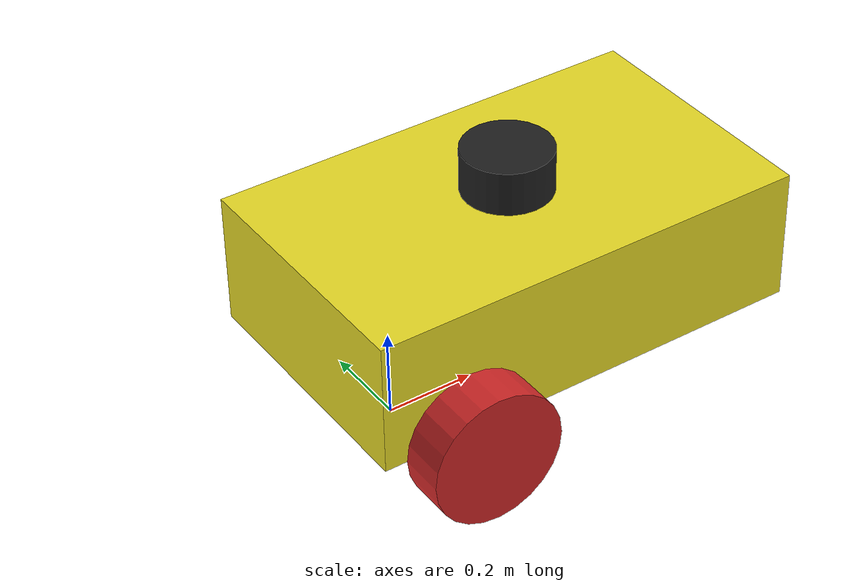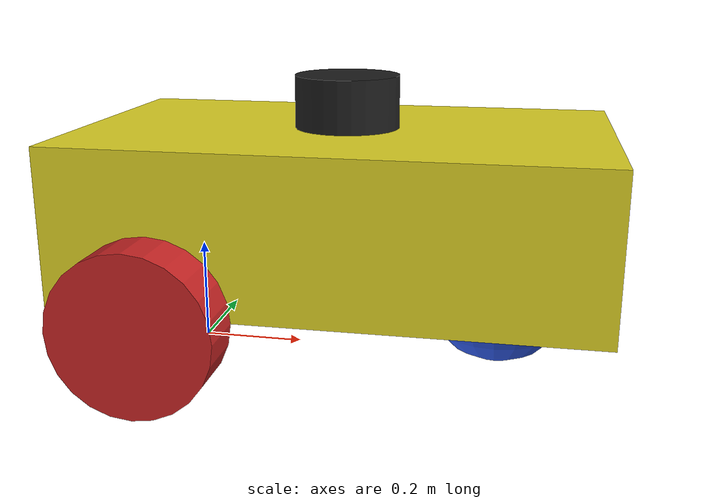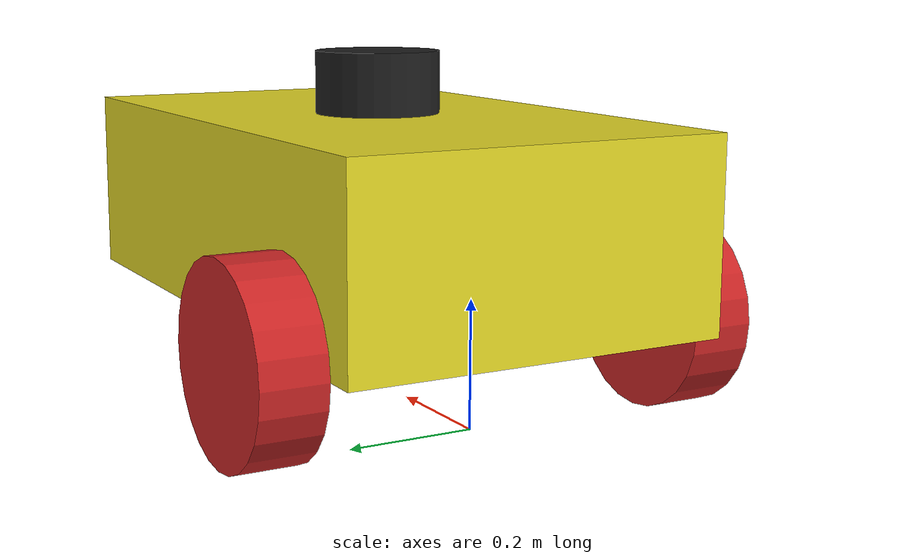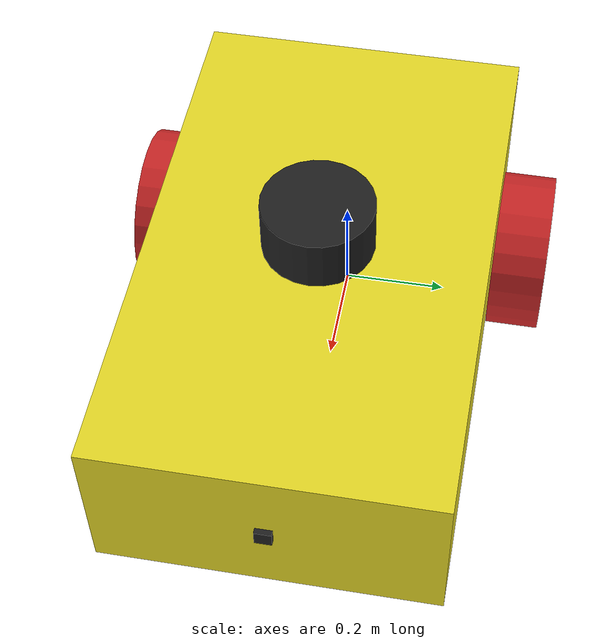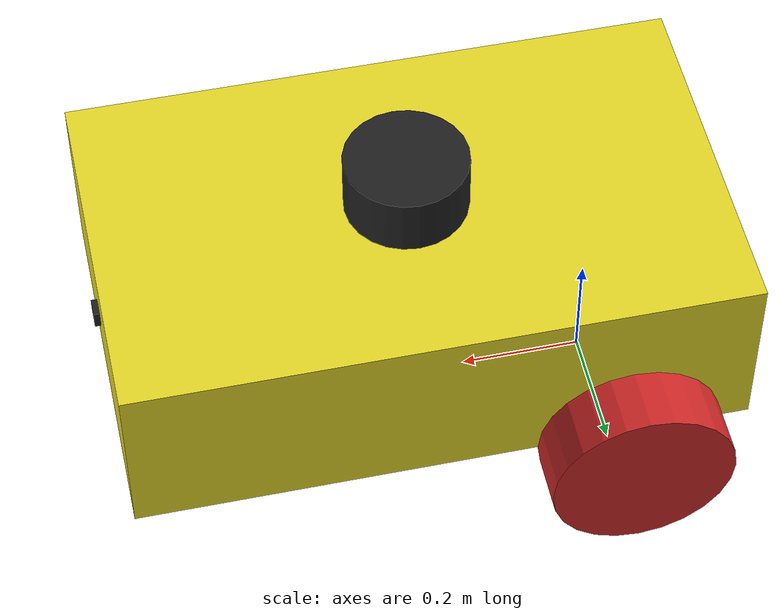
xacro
<?xml version="1.0"?>

<robot name="differential_drive_robot" xmlns:xacro="http://www.ros.org/wiki/xacro">

<!--_____________INERTIA AND BODY CONSTANTS_____________________________________________-->

<!-- defining constants -->
<xacro:property name="pi_const" value="3.14159265"/>

<!-- body dimensions -->
<xacro:property name="a" value="1" />
<xacro:property name="b" value="0.3" />
<xacro:property name="c" value="0.6" />

<!-- WHeel and xastor dimensions-->
<xacro:property name="r" value="0.15" />
<xacro:property name="d" value="0.1" />

<!--Lidar dimensions-->
<xacro:property name="r_lidar" value="0.1" />
<xacro:property name="d_lidar" value="0.1" />

<xacro:property name="r_camera" value="0.025" />
<xacro:property name="d_camera" value="0.025" />

<xacro:property name="s1" value="${b/2+r}" />
<xacro:property name="s2" value="${2*r}" />
<xacro:property name="s3" value="${2*r}" />
<xacro:property name="s4" value="${c/2+d/2}" />

<!-- Mass Nd Inertial Properties-->

<!-- Body, Wheel, Caster Material Density-->
<xacro:property name="d1" value="2710.0" />
<xacro:property name="d2" value="2710.0" />
<xacro:property name="d3" value="2710.0" />

<!-- Body mass, Wheel mass, caster mass-->
<xacro:property name="m1" value="${d1*a*b*c}" />
<xacro:property name="m2" value="${d2*pi_const*r*r*d}" />
<xacro:property name="m3" value="${d3*(4.0/3.0)*pi_const*r*r*r}" />

<!-- Body inertia, wheel inertia, castor nertia-->

<!-- for Body, 3 axes-->
<xacro:property name="Ix_body" value="${(1.0/12.0)*m1*(b*b+c*c)}" />
<xacro:property name="Iy_body" value="${(1.0/12.0)*m1*(b*b+a*a)}" />
<xacro:property name="Iz_body" value="${(1.0/12.0)*m1*(a*a+c*c)}" />

<!-- Inertia for Wheel-->
<xacro:property name="Iz_wheel" value="${(0.5)*m2*r*r}" />
<xacro:property name="I_wheel" value="${(1.0/12.0)*m2*(3*r*r+d*d)}" />

<!-- inertia for caster sphere-->
<xacro:property name="I_caster" value="${(2.0/5.0)*m3*r*r}" />

<!-- The following macro defines the complete inertial section of the robot body-->
<xacro:macro name="inertia_body">
    <inertial>
    <!-- Displacemengt and Orientation of the center of mass frame of the link wrt -->
    <origin rpy="0 0 0" xyz="0 0 ${s1}" />   <!-- RPY-> Roll Pitch Yaw-->
    <mass value="${m1}"/>
    <inertia ixx="${Ix_body}" ixy="0.0" ixz="0.0" iyy="${Iy_body}" iyz="0.0" izz="${Iz_body}" />
    </inertial>
</xacro:macro>

<xacro:macro name="inertia_wheel">
    <inertial>
    <origin rpy="1.570795 0 0" xyz="0 0 0" />  <!-- RPY-> Roll Pitch Yaw = pi/2 0 0 -->
    <mass value="${m2}" />
    <inertia ixx="${I_wheel}" ixy="0.0" ixz="0.0" iyy="${I_wheel}" iyz="0.0" izz="${Iz_wheel}" />
    </inertial>
</xacro:macro>

<xacro:macro name="inertia_caster">
    <inertial>
    <origin rpy="0 0 0" xyz="0 0 0" />  <!-- RPY-> Roll Pitch Yaw = 0 0 0 -->
    <mass value="${m3}" />
    <inertia ixx="${I_caster}" ixy="0.0" ixz="0.0" iyy="${I_caster}" iyz="0.0" izz="${I_caster}" />
    </inertial>
</xacro:macro>

<xacro:macro name="inertia_lidar">
    <inertial>
        <mass value="1e-6"/>
        <origin xyz="0 0 0" rpy="0 0 0"/>
        <inertia ixx="0.0001" ixy="0" ixz="0" iyy="0.0001" iyz="0" izz="0.0001"/>
    </inertial>
</xacro:macro>

<xacro:macro name="inertia_camera">
    <inertial>
        <mass value="1e-6"/>
        <origin xyz="0 0 0" rpy="0 0 0"/>
        <inertia ixx="0.0001" ixy="0" ixz="0" iyy="0.0001" iyz="0" izz="0.0001"/>
    </inertial>
</xacro:macro>

<!--_____________LINKS AND JOINTS_____________________________________________-->

<!-- For proper Robot control in Gazebo, we include its gazebo file-->

<xacro:include filename="$(find mobile_robot)/model/robot.gazebo" />

<link name="base_footprint" />  <!-- Fictious Link-->

<joint name="body_link_joint" type="fixed">
    <parent link="base_footprint"/>
    <child link="body_link"/>
    <origin xyz="${s2} 0 0" rpy="0 0 0"/>
</joint>

<link name="body_link">
    <visual>
        <geometry>
            <box size="${a} ${c} ${b}"/>
        </geometry>

        <!-- setting the coordindnates and orientation of this body link-->
        <origin rpy="0 0 0" xyz="0 0 ${s1}" />
    </visual>

    <collision> <!-- defines hoe much area your object vonsumes in colisions-->
        <origin rpy="0 0 0" xyz="0 0 ${s1}" />
        <geometry>
            <box size="${a} ${c} ${b}"/>
        </geometry>
    </collision>

    <xacro:inertia_body />
</link>

 <!-- end of body link-->

<!-- back right wheel begins-->
<joint name="wheel1_joint" type="continuous">
    <parent link="body_link"/>
    <child link="wheel1_link"/>

    <origin xyz="${-s2} ${-s4} ${r}" rpy="0.0 0.0 0.0"/>
    <axis xyz="0 1 0"/> <!-- Axis around whoch rotstion is happening-->
    <limit effort="50000" velocity="10"/>
    <dynamics damping="1.0" friction="1.0" />

</joint>

<link name="wheel1_link">
    <visual>
        <origin xyz="0 0 0" rpy="${pi_const/2} 0 0"/>
        <geometry>
            <cylinder radius="${r}" length="${d}"/>
        </geometry>
    </visual>

    <collision>
        <origin xyz="0 0 0" rpy="${pi_const/2} 0 0"/>
        <geometry>
            <cylinder radius="${r}" length="${d}"/>
        </geometry>
    </collision>

    <xacro:inertia_wheel />

</link>

<!-- back left wheel begins-->
<joint name="wheel2_joint" type="continuous">
    <parent link="body_link"/>
    <child link="wheel2_link"/>

    <origin xyz="${-s2} ${s4} ${r}" rpy="0.0 0.0 0.0"/>
    <axis xyz="0 1 0"/>
    <limit effort="50000" velocity="10"/>
    <dynamics damping="1.0" friction="1.0" />

</joint>

<link name="wheel2_link">
    <visual>
        <origin xyz="0 0 0" rpy="${pi_const/2} 0 0"/>
        <geometry>
            <cylinder radius="${r}" length="${d}"/>
        </geometry>
    </visual>

    <collision>
        <origin xyz="0 0 0" rpy="${pi_const/2} 0 0"/>
        <geometry>
            <cylinder radius="${r}" length="${d}"/>
        </geometry>
    </collision>

    <xacro:inertia_wheel />

</link>

<joint name="caster_joint" type="fixed">
    <origin xyz="${s3} 0 ${r}" rpy="0.0 0.0 0.0"/>
    <parent link="body_link"/>
    <child link="caster_link"/>

</joint>

<link name="caster_link">
    <visual name="">
        <origin xyz="0.0 0.0 0.0" rpy="0.0 0.0 0.0"/>
        <geometry>
            <sphere radius="${r}"/>
        </geometry>

    </visual>
    <collision>
        <origin xyz="0.0 0.0 0.0" rpy="0.0 0.0 0.0"/>
        <geometry>
            <sphere radius="${r}"/>
        </geometry>
    </collision>
    <xacro:inertia_caster />
</link>

<joint name="lidar_joint" type="fixed">
    <parent link="body_link"/>
    <child link="lidar_link"/>
    <origin xyz="0 0 ${b+r+r_lidar/2}" rpy="0 0 0"/>
</joint>

<link name="lidar_link">
    <visual>
        <origin xyz="0.0 0.0 0.0" rpy="0.0 0.0 0.0"/>
        <geometry>
            <cylinder radius="${r_lidar}" length="${d_lidar}"/>
        </geometry>
        <material name="Gazebo/Black"/>
    </visual>

    <collision>
        <origin xyz="0.0 0.0 0.0" rpy="0.0 0.0 0.0"/>
        <geometry>
            <cylinder radius="${r_lidar}" length="${d_lidar}"/>
        </geometry>
    </collision>
    <xacro:inertia_lidar />
</link>

<joint name="camera_joint" type="fixed">
    <parent link="body_link"/>
    <child link="camera_link"/>
    <origin xyz="0.505 0 ${s1}" rpy="0 0 0"/>
</joint>

<link name="camera_link">
    <visual>
        <origin xyz="0.0 0.0 0.0" rpy="0.0 0.0 0.0"/>
        <geometry>
            <box size="0.010 0.03 0.03"/>
        </geometry>
        <material name="Gazebo/Black"/>
    </visual>
    <xacro:inertia_camera/>
</link>

<joint name="camera_optical_joint" type="fixed">
    <parent link="camera_link"/>
    <child link="camera_link_optical"/>
    <origin xyz="0 0 0" rpy="${-pi_const/2} 0.0 ${-pi_const/2}"/>
</joint>

<link name="camera_link_optical"></link>

<!--_____________CONTROL_____________________________________________-->

<ros2_control name="GazeboSimSystem" type="system">
        <hardware>
            <plugin>gz_ros2_control/GazeboSimSystem</plugin>
        </hardware>
        <joint name="wheel1_joint">
            <command_interface name="velocity">
                <param name="min">-10</param>
                <param name="max">10</param>

            </command_interface>
            <state_interface name="velocity"></state_interface>
            <state_interface name="position"></state_interface>
        </joint>
        <joint name="wheel2_joint">
            <command_interface name="velocity">
                <param name="min">-10</param>
                <param name="max">10</param>

            </command_interface>
            <state_interface name="velocity"></state_interface>
            <state_interface name="position"></state_interface>
         </joint>
    </ros2_control>

</robot>
